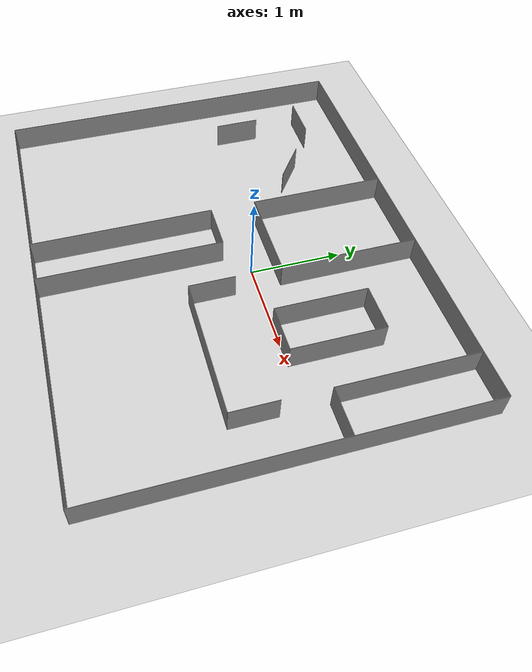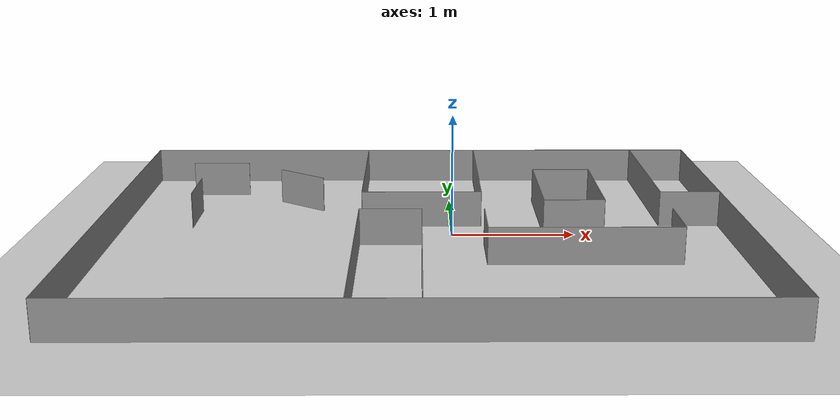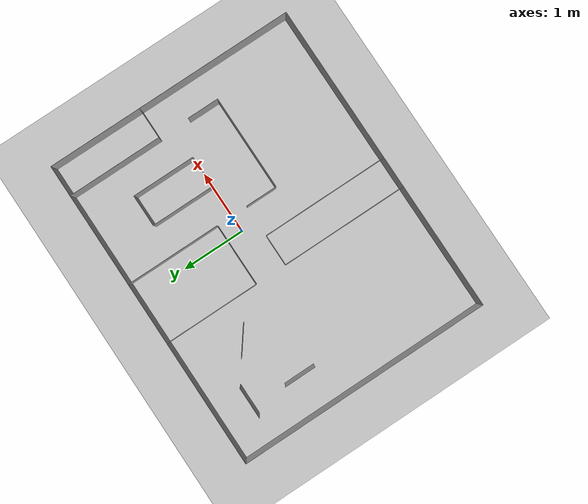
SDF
<sdf version="1.7">
 <world name="default">
  <light name="sun" type="directional">
   <pose>0 0 10 0 -0 0</pose>
   <diffuse>0.8 0.8 0.8 1</diffuse>
   <specular>0.2 0.2 0.2 1</specular>
   <attenuation>
    <range>1000</range>
    <constant>0.9</constant>
    <linear>0.01</linear>
    <quadratic>0.001</quadratic>
   </attenuation>
   <direction>-0.5 0.1 -0.9</direction>
   <spot><inner_angle>0</inner_angle><outer_angle>0</outer_angle><falloff>0</falloff></spot>
  </light>
  <model name="ground_plane">
   <static>1</static>
   <link name="link">
    <collision name="collision">
     <geometry><plane><normal>0 0 1</normal><size>100 100</size></plane></geometry>
     <surface>
      <contact><collide_bitmask>65535</collide_bitmask></contact>
      <friction><ode><mu>100</mu><mu2>50</mu2></ode></friction>
     </surface>
    </collision>
    <visual name="visual">
     <cast_shadows>0</cast_shadows>
     <geometry><plane><normal>0 0 1</normal><size>100 100</size></plane></geometry>
     <material>
      <script><uri>file://media/materials/scripts/gazebo.material</uri><name>Gazebo/Grey</name></script>
     </material>
    </visual>
   </link>
  </model>
  <gravity>0 0 -9.8</gravity>
  <magnetic_field>6e-06 2.3e-05 -4.2e-05</magnetic_field>
  <atmosphere type="adiabatic"/>
  <physics type="ode">
   <max_step_size>0.001</max_step_size>
   <real_time_factor>1</real_time_factor>
   <real_time_update_rate>1000</real_time_update_rate>
  </physics>
  <scene><ambient>0.4 0.4 0.4 1</ambient><background>0.7 0.7 0.7 1</background><shadows>1</shadows></scene>
  <spherical_coordinates>
   <surface_model>EARTH_WGS84</surface_model>
   <latitude_deg>0</latitude_deg>
   <longitude_deg>0</longitude_deg>
   <elevation>0</elevation>
   <heading_deg>0</heading_deg>
  </spherical_coordinates>
  <model name="boundary_5*0.3_clone">
   <link name="link">
    <inertial>
     <mass>1</mass>
     <inertia>
      <ixx>0.166667</ixx>
      <ixy>0</ixy>
      <ixz>0</ixz>
      <iyy>0.166667</iyy>
      <iyz>0</iyz>
      <izz>0.166667</izz>
     </inertia>
    </inertial>
    <visual name="visual">
     <geometry><box><size>5 0.005 0.3</size></box></geometry>
     <material>
      <script><name>Gazebo/Grey</name><uri>file://media/materials/scripts/gazebo.material</uri></script>
      <shader type="pixel"><normal_map>__default__</normal_map></shader>
      <ambient>0.3 0.3 0.3 1</ambient>
      <diffuse>0.7 0.7 0.7 1</diffuse>
      <specular>0.01 0.01 0.01 1</specular>
      <emissive>0 0 0 1</emissive>
     </material>
    </visual>
    <collision name="collision">
     <geometry><box><size>5 0.005 0.3</size></box></geometry>
     <surface>
      <friction>
       <ode><mu>1</mu><mu2>1</mu2><fdir1>0 0 0</fdir1><slip1>0</slip1><slip2>0</slip2></ode>
       <torsional>
        <coefficient>1</coefficient>
        <patch_radius>0</patch_radius>
        <surface_radius>0</surface_radius>
        <use_patch_radius>1</use_patch_radius>
        <ode><slip>0</slip></ode>
       </torsional>
      </friction>
      <bounce><restitution_coefficient>0</restitution_coefficient><threshold>1e+06</threshold></bounce>
      <contact>
       <collide_without_contact>0</collide_without_contact>
       <collide_without_contact_bitmask>1</collide_without_contact_bitmask>
       <collide_bitmask>1</collide_bitmask>
       <ode>
        <soft_cfm>0</soft_cfm>
        <soft_erp>0.2</soft_erp>
        <kp>1e+13</kp>
        <kd>1</kd>
        <max_vel>0.01</max_vel>
        <min_depth>0</min_depth>
       </ode>
       <bullet>
        <split_impulse>1</split_impulse>
        <split_impulse_penetration_threshold>-0.01</split_impulse_penetration_threshold>
        <soft_cfm>0</soft_cfm>
        <soft_erp>0.2</soft_erp>
        <kp>1e+13</kp>
        <kd>1</kd>
       </bullet>
      </contact>
     </surface>
    </collision>
   </link>
   <static>0</static>
   <pose>-0.25 -2.25 0.15 0 -0 0</pose>
  </model>
  <model name="boundry_4*0.3">
   <link name="link">
    <inertial>
     <mass>1</mass>
     <inertia>
      <ixx>0.166667</ixx>
      <ixy>0</ixy>
      <ixz>0</ixz>
      <iyy>0.166667</iyy>
      <iyz>0</iyz>
      <izz>0.166667</izz>
     </inertia>
    </inertial>
    <visual name="visual">
     <geometry><box><size>0.005 4 0.3</size></box></geometry>
     <material>
      <script><name>Gazebo/Grey</name><uri>file://media/materials/scripts/gazebo.material</uri></script>
      <shader type="pixel"><normal_map>__default__</normal_map></shader>
      <ambient>0.3 0.3 0.3 1</ambient>
      <diffuse>0.7 0.7 0.7 1</diffuse>
      <specular>0.01 0.01 0.01 1</specular>
      <emissive>0 0 0 1</emissive>
     </material>
    </visual>
    <collision name="collision">
     <geometry><box><size>0.005 4 0.3</size></box></geometry>
     <surface>
      <friction>
       <ode><mu>1</mu><mu2>1</mu2><fdir1>0 0 0</fdir1><slip1>0</slip1><slip2>0</slip2></ode>
       <torsional>
        <coefficient>1</coefficient>
        <patch_radius>0</patch_radius>
        <surface_radius>0</surface_radius>
        <use_patch_radius>1</use_patch_radius>
        <ode><slip>0</slip></ode>
       </torsional>
      </friction>
      <bounce><restitution_coefficient>0</restitution_coefficient><threshold>1e+06</threshold></bounce>
      <contact>
       <collide_without_contact>0</collide_without_contact>
       <collide_without_contact_bitmask>1</collide_without_contact_bitmask>
       <collide_bitmask>1</collide_bitmask>
       <ode>
        <soft_cfm>0</soft_cfm>
        <soft_erp>0.2</soft_erp>
        <kp>1e+13</kp>
        <kd>1</kd>
        <max_vel>0.01</max_vel>
        <min_depth>0</min_depth>
       </ode>
       <bullet>
        <split_impulse>1</split_impulse>
        <split_impulse_penetration_threshold>-0.01</split_impulse_penetration_threshold>
        <soft_cfm>0</soft_cfm>
        <soft_erp>0.2</soft_erp>
        <kp>1e+13</kp>
        <kd>1</kd>
       </bullet>
      </contact>
     </surface>
    </collision>
   </link>
   <static>0</static>
   <pose>-2.75 -0.25 0.15 0 -0 0</pose>
  </model>
  <model name="boundary_5*0.3">
   <link name="link">
    <inertial>
     <mass>1</mass>
     <inertia>
      <ixx>0.166667</ixx>
      <ixy>0</ixy>
      <ixz>0</ixz>
      <iyy>0.166667</iyy>
      <iyz>0</iyz>
      <izz>0.166667</izz>
     </inertia>
    </inertial>
    <visual name="visual">
     <geometry><box><size>5 0.005 0.3</size></box></geometry>
     <material>
      <script><name>Gazebo/Grey</name><uri>file://media/materials/scripts/gazebo.material</uri></script>
      <shader type="pixel"><normal_map>__default__</normal_map></shader>
      <ambient>0.3 0.3 0.3 1</ambient>
      <diffuse>0.7 0.7 0.7 1</diffuse>
      <specular>0.01 0.01 0.01 1</specular>
      <emissive>0 0 0 1</emissive>
     </material>
    </visual>
    <collision name="collision">
     <geometry><box><size>5 0.005 0.3</size></box></geometry>
     <surface>
      <friction>
       <ode><mu>1</mu><mu2>1</mu2><fdir1>0 0 0</fdir1><slip1>0</slip1><slip2>0</slip2></ode>
       <torsional>
        <coefficient>1</coefficient>
        <patch_radius>0</patch_radius>
        <surface_radius>0</surface_radius>
        <use_patch_radius>1</use_patch_radius>
        <ode><slip>0</slip></ode>
       </torsional>
      </friction>
      <bounce><restitution_coefficient>0</restitution_coefficient><threshold>1e+06</threshold></bounce>
      <contact>
       <collide_without_contact>0</collide_without_contact>
       <collide_without_contact_bitmask>1</collide_without_contact_bitmask>
       <collide_bitmask>1</collide_bitmask>
       <ode>
        <soft_cfm>0</soft_cfm>
        <soft_erp>0.2</soft_erp>
        <kp>1e+13</kp>
        <kd>1</kd>
        <max_vel>0.01</max_vel>
        <min_depth>0</min_depth>
       </ode>
       <bullet>
        <split_impulse>1</split_impulse>
        <split_impulse_penetration_threshold>-0.01</split_impulse_penetration_threshold>
        <soft_cfm>0</soft_cfm>
        <soft_erp>0.2</soft_erp>
        <kp>1e+13</kp>
        <kd>1</kd>
       </bullet>
      </contact>
     </surface>
    </collision>
   </link>
   <static>0</static>
   <pose>-0.25 1.75 0.15 0 -0 0</pose>
  </model>
  <model name="boundry_4*0.3_clone">
   <link name="link">
    <inertial>
     <mass>1</mass>
     <inertia>
      <ixx>0.166667</ixx>
      <ixy>0</ixy>
      <ixz>0</ixz>
      <iyy>0.166667</iyy>
      <iyz>0</iyz>
      <izz>0.166667</izz>
     </inertia>
    </inertial>
    <visual name="visual">
     <geometry><box><size>0.005 4 0.3</size></box></geometry>
     <material>
      <script><name>Gazebo/Grey</name><uri>file://media/materials/scripts/gazebo.material</uri></script>
      <shader type="pixel"><normal_map>__default__</normal_map></shader>
      <ambient>0.3 0.3 0.3 1</ambient>
      <diffuse>0.7 0.7 0.7 1</diffuse>
      <specular>0.01 0.01 0.01 1</specular>
      <emissive>0 0 0 1</emissive>
     </material>
    </visual>
    <collision name="collision">
     <geometry><box><size>0.005 4 0.3</size></box></geometry>
     <surface>
      <friction>
       <ode><mu>1</mu><mu2>1</mu2><fdir1>0 0 0</fdir1><slip1>0</slip1><slip2>0</slip2></ode>
       <torsional>
        <coefficient>1</coefficient>
        <patch_radius>0</patch_radius>
        <surface_radius>0</surface_radius>
        <use_patch_radius>1</use_patch_radius>
        <ode><slip>0</slip></ode>
       </torsional>
      </friction>
      <bounce><restitution_coefficient>0</restitution_coefficient><threshold>1e+06</threshold></bounce>
      <contact>
       <collide_without_contact>0</collide_without_contact>
       <collide_without_contact_bitmask>1</collide_without_contact_bitmask>
       <collide_bitmask>1</collide_bitmask>
       <ode>
        <soft_cfm>0</soft_cfm>
        <soft_erp>0.2</soft_erp>
        <kp>1e+13</kp>
        <kd>1</kd>
        <max_vel>0.01</max_vel>
        <min_depth>0</min_depth>
       </ode>
       <bullet>
        <split_impulse>1</split_impulse>
        <split_impulse_penetration_threshold>-0.01</split_impulse_penetration_threshold>
        <soft_cfm>0</soft_cfm>
        <soft_erp>0.2</soft_erp>
        <kp>1e+13</kp>
        <kd>1</kd>
       </bullet>
      </contact>
     </surface>
    </collision>
   </link>
   <static>0</static>
   <pose>2.25 -0.25 0.15 0 -0 0</pose>
  </model>
  <model name="boundry_1.5*0.3">
   <link name="link">
    <inertial>
     <mass>1</mass>
     <inertia>
      <ixx>0.166667</ixx>
      <ixy>0</ixy>
      <ixz>0</ixz>
      <iyy>0.166667</iyy>
      <iyz>0</iyz>
      <izz>0.166667</izz>
     </inertia>
    </inertial>
    <visual name="visual">
     <geometry><box><size>0.005 1.5 0.3</size></box></geometry>
     <material>
      <script><name>Gazebo/Grey</name><uri>file://media/materials/scripts/gazebo.material</uri></script>
      <shader type="pixel"><normal_map>__default__</normal_map></shader>
      <ambient>0.3 0.3 0.3 1</ambient>
      <diffuse>0.7 0.7 0.7 1</diffuse>
      <specular>0.01 0.01 0.01 1</specular>
      <emissive>0 0 0 1</emissive>
     </material>
    </visual>
    <collision name="collision">
     <geometry><box><size>0.005 1.5 0.3</size></box></geometry>
     <surface>
      <friction>
       <ode><mu>1</mu><mu2>1</mu2><fdir1>0 0 0</fdir1><slip1>0</slip1><slip2>0</slip2></ode>
       <torsional>
        <coefficient>1</coefficient>
        <patch_radius>0</patch_radius>
        <surface_radius>0</surface_radius>
        <use_patch_radius>1</use_patch_radius>
        <ode><slip>0</slip></ode>
       </torsional>
      </friction>
      <bounce><restitution_coefficient>0</restitution_coefficient><threshold>1e+06</threshold></bounce>
      <contact>
       <collide_without_contact>0</collide_without_contact>
       <collide_without_contact_bitmask>1</collide_without_contact_bitmask>
       <collide_bitmask>1</collide_bitmask>
       <ode>
        <soft_cfm>0</soft_cfm>
        <soft_erp>0.2</soft_erp>
        <kp>1e+13</kp>
        <kd>1</kd>
        <max_vel>0.01</max_vel>
        <min_depth>0</min_depth>
       </ode>
       <bullet>
        <split_impulse>1</split_impulse>
        <split_impulse_penetration_threshold>-0.01</split_impulse_penetration_threshold>
        <soft_cfm>0</soft_cfm>
        <soft_erp>0.2</soft_erp>
        <kp>1e+13</kp>
        <kd>1</kd>
       </bullet>
      </contact>
     </surface>
    </collision>
   </link>
   <static>0</static>
   <pose>-0.75 1 0.15 0 -0 0</pose>
  </model>
  <model name="boundry_1.5*0.3_clone">
   <link name="link">
    <inertial>
     <mass>1</mass>
     <inertia>
      <ixx>0.166667</ixx>
      <ixy>0</ixy>
      <ixz>0</ixz>
      <iyy>0.166667</iyy>
      <iyz>0</iyz>
      <izz>0.166667</izz>
     </inertia>
    </inertial>
    <visual name="visual">
     <geometry><box><size>0.005 1.5 0.3</size></box></geometry>
     <material>
      <script><name>Gazebo/Grey</name><uri>file://media/materials/scripts/gazebo.material</uri></script>
      <shader type="pixel"><normal_map>__default__</normal_map></shader>
      <ambient>0.3 0.3 0.3 1</ambient>
      <diffuse>0.7 0.7 0.7 1</diffuse>
      <specular>0.01 0.01 0.01 1</specular>
      <emissive>0 0 0 1</emissive>
     </material>
    </visual>
    <collision name="collision">
     <geometry><box><size>0.005 1.5 0.3</size></box></geometry>
     <surface>
      <friction>
       <ode><mu>1</mu><mu2>1</mu2><fdir1>0 0 0</fdir1><slip1>0</slip1><slip2>0</slip2></ode>
       <torsional>
        <coefficient>1</coefficient>
        <patch_radius>0</patch_radius>
        <surface_radius>0</surface_radius>
        <use_patch_radius>1</use_patch_radius>
        <ode><slip>0</slip></ode>
       </torsional>
      </friction>
      <bounce><restitution_coefficient>0</restitution_coefficient><threshold>1e+06</threshold></bounce>
      <contact>
       <collide_without_contact>0</collide_without_contact>
       <collide_without_contact_bitmask>1</collide_without_contact_bitmask>
       <collide_bitmask>1</collide_bitmask>
       <ode>
        <soft_cfm>0</soft_cfm>
        <soft_erp>0.2</soft_erp>
        <kp>1e+13</kp>
        <kd>1</kd>
        <max_vel>0.01</max_vel>
        <min_depth>0</min_depth>
       </ode>
       <bullet>
        <split_impulse>1</split_impulse>
        <split_impulse_penetration_threshold>-0.01</split_impulse_penetration_threshold>
        <soft_cfm>0</soft_cfm>
        <soft_erp>0.2</soft_erp>
        <kp>1e+13</kp>
        <kd>1</kd>
       </bullet>
      </contact>
     </surface>
    </collision>
   </link>
   <static>0</static>
   <pose>0.25 1 0.15 0 -0 0</pose>
  </model>
  <model name="boundry_1.5*0.3_clone_0">
   <link name="link">
    <inertial>
     <mass>1</mass>
     <inertia>
      <ixx>0.166667</ixx>
      <ixy>0</ixy>
      <ixz>0</ixz>
      <iyy>0.166667</iyy>
      <iyz>0</iyz>
      <izz>0.166667</izz>
     </inertia>
    </inertial>
    <visual name="visual">
     <geometry><box><size>0.005 1.5 0.3</size></box></geometry>
     <material>
      <script><name>Gazebo/Grey</name><uri>file://media/materials/scripts/gazebo.material</uri></script>
      <shader type="pixel"><normal_map>__default__</normal_map></shader>
      <ambient>0.3 0.3 0.3 1</ambient>
      <diffuse>0.7 0.7 0.7 1</diffuse>
      <specular>0.01 0.01 0.01 1</specular>
      <emissive>0 0 0 1</emissive>
     </material>
    </visual>
    <collision name="collision">
     <geometry><box><size>0.005 1.5 0.3</size></box></geometry>
     <surface>
      <friction>
       <ode><mu>1</mu><mu2>1</mu2><fdir1>0 0 0</fdir1><slip1>0</slip1><slip2>0</slip2></ode>
       <torsional>
        <coefficient>1</coefficient>
        <patch_radius>0</patch_radius>
        <surface_radius>0</surface_radius>
        <use_patch_radius>1</use_patch_radius>
        <ode><slip>0</slip></ode>
       </torsional>
      </friction>
      <bounce><restitution_coefficient>0</restitution_coefficient><threshold>1e+06</threshold></bounce>
      <contact>
       <collide_without_contact>0</collide_without_contact>
       <collide_without_contact_bitmask>1</collide_without_contact_bitmask>
       <collide_bitmask>1</collide_bitmask>
       <ode>
        <soft_cfm>0</soft_cfm>
        <soft_erp>0.2</soft_erp>
        <kp>1e+13</kp>
        <kd>1</kd>
        <max_vel>0.01</max_vel>
        <min_depth>0</min_depth>
       </ode>
       <bullet>
        <split_impulse>1</split_impulse>
        <split_impulse_penetration_threshold>-0.01</split_impulse_penetration_threshold>
        <soft_cfm>0</soft_cfm>
        <soft_erp>0.2</soft_erp>
        <kp>1e+13</kp>
        <kd>1</kd>
       </bullet>
      </contact>
     </surface>
    </collision>
   </link>
   <static>0</static>
   <pose>1.75 1 0.15 0 -0 0</pose>
  </model>
  <model name="boundry_2*0.3">
   <link name="link">
    <inertial>
     <mass>1</mass>
     <inertia>
      <ixx>0.166667</ixx>
      <ixy>0</ixy>
      <ixz>0</ixz>
      <iyy>0.166667</iyy>
      <iyz>0</iyz>
      <izz>0.166667</izz>
     </inertia>
    </inertial>
    <visual name="visual">
     <geometry><box><size>0.005 2 0.3</size></box></geometry>
     <material>
      <script><name>Gazebo/Grey</name><uri>file://media/materials/scripts/gazebo.material</uri></script>
      <shader type="pixel"><normal_map>__default__</normal_map></shader>
      <ambient>0.3 0.3 0.3 1</ambient>
      <diffuse>0.7 0.7 0.7 1</diffuse>
      <specular>0.01 0.01 0.01 1</specular>
      <emissive>0 0 0 1</emissive>
     </material>
    </visual>
    <collision name="collision">
     <geometry><box><size>0.005 2 0.3</size></box></geometry>
     <surface>
      <friction>
       <ode><mu>1</mu><mu2>1</mu2><fdir1>0 0 0</fdir1><slip1>0</slip1><slip2>0</slip2></ode>
       <torsional>
        <coefficient>1</coefficient>
        <patch_radius>0</patch_radius>
        <surface_radius>0</surface_radius>
        <use_patch_radius>1</use_patch_radius>
        <ode><slip>0</slip></ode>
       </torsional>
      </friction>
      <bounce><restitution_coefficient>0</restitution_coefficient><threshold>1e+06</threshold></bounce>
      <contact>
       <collide_without_contact>0</collide_without_contact>
       <collide_without_contact_bitmask>1</collide_without_contact_bitmask>
       <collide_bitmask>1</collide_bitmask>
       <ode>
        <soft_cfm>0</soft_cfm>
        <soft_erp>0.2</soft_erp>
        <kp>1e+13</kp>
        <kd>1</kd>
        <max_vel>0.01</max_vel>
        <min_depth>0</min_depth>
       </ode>
       <bullet>
        <split_impulse>1</split_impulse>
        <split_impulse_penetration_threshold>-0.01</split_impulse_penetration_threshold>
        <soft_cfm>0</soft_cfm>
        <soft_erp>0.2</soft_erp>
        <kp>1e+13</kp>
        <kd>1</kd>
       </bullet>
      </contact>
     </surface>
    </collision>
   </link>
   <static>0</static>
   <pose>-0.75 -1.25 0.15 0 -0 0</pose>
  </model>
  <model name="boundry_2*0.3_clone">
   <link name="link">
    <inertial>
     <mass>1</mass>
     <inertia>
      <ixx>0.166667</ixx>
      <ixy>0</ixy>
      <ixz>0</ixz>
      <iyy>0.166667</iyy>
      <iyz>0</iyz>
      <izz>0.166667</izz>
     </inertia>
    </inertial>
    <visual name="visual">
     <geometry><box><size>0.005 2 0.3</size></box></geometry>
     <material>
      <script><name>Gazebo/Grey</name><uri>file://media/materials/scripts/gazebo.material</uri></script>
      <shader type="pixel"><normal_map>__default__</normal_map></shader>
      <ambient>0.3 0.3 0.3 1</ambient>
      <diffuse>0.7 0.7 0.7 1</diffuse>
      <specular>0.01 0.01 0.01 1</specular>
      <emissive>0 0 0 1</emissive>
     </material>
    </visual>
    <collision name="collision">
     <geometry><box><size>0.005 2 0.3</size></box></geometry>
     <surface>
      <friction>
       <ode><mu>1</mu><mu2>1</mu2><fdir1>0 0 0</fdir1><slip1>0</slip1><slip2>0</slip2></ode>
       <torsional>
        <coefficient>1</coefficient>
        <patch_radius>0</patch_radius>
        <surface_radius>0</surface_radius>
        <use_patch_radius>1</use_patch_radius>
        <ode><slip>0</slip></ode>
       </torsional>
      </friction>
      <bounce><restitution_coefficient>0</restitution_coefficient><threshold>1e+06</threshold></bounce>
      <contact>
       <collide_without_contact>0</collide_without_contact>
       <collide_without_contact_bitmask>1</collide_without_contact_bitmask>
       <collide_bitmask>1</collide_bitmask>
       <ode>
        <soft_cfm>0</soft_cfm>
        <soft_erp>0.2</soft_erp>
        <kp>1e+13</kp>
        <kd>1</kd>
        <max_vel>0.01</max_vel>
        <min_depth>0</min_depth>
       </ode>
       <bullet>
        <split_impulse>1</split_impulse>
        <split_impulse_penetration_threshold>-0.01</split_impulse_penetration_threshold>
        <soft_cfm>0</soft_cfm>
        <soft_erp>0.2</soft_erp>
        <kp>1e+13</kp>
        <kd>1</kd>
       </bullet>
      </contact>
     </surface>
    </collision>
   </link>
   <static>0</static>
   <pose>-0.25 -1.25 0.15 0 -0 0</pose>
  </model>
  <model name="boundry_1.5*0.3_clone_clone">
   <link name="link">
    <inertial>
     <mass>1</mass>
     <inertia>
      <ixx>0.166667</ixx>
      <ixy>0</ixy>
      <ixz>0</ixz>
      <iyy>0.166667</iyy>
      <iyz>0</iyz>
      <izz>0.166667</izz>
     </inertia>
    </inertial>
    <visual name="visual">
     <geometry><box><size>0.005 1.5 0.3</size></box></geometry>
     <material>
      <script><name>Gazebo/Grey</name><uri>file://media/materials/scripts/gazebo.material</uri></script>
      <shader type="pixel"><normal_map>__default__</normal_map></shader>
      <ambient>0.3 0.3 0.3 1</ambient>
      <diffuse>0.7 0.7 0.7 1</diffuse>
      <specular>0.01 0.01 0.01 1</specular>
      <emissive>0 0 0 1</emissive>
     </material>
    </visual>
    <collision name="collision">
     <geometry><box><size>0.005 1.5 0.3</size></box></geometry>
     <surface>
      <friction>
       <ode><mu>1</mu><mu2>1</mu2><fdir1>0 0 0</fdir1><slip1>0</slip1><slip2>0</slip2></ode>
       <torsional>
        <coefficient>1</coefficient>
        <patch_radius>0</patch_radius>
        <surface_radius>0</surface_radius>
        <use_patch_radius>1</use_patch_radius>
        <ode><slip>0</slip></ode>
       </torsional>
      </friction>
      <bounce><restitution_coefficient>0</restitution_coefficient><threshold>1e+06</threshold></bounce>
      <contact>
       <collide_without_contact>0</collide_without_contact>
       <collide_without_contact_bitmask>1</collide_without_contact_bitmask>
       <collide_bitmask>1</collide_bitmask>
       <ode>
        <soft_cfm>0</soft_cfm>
        <soft_erp>0.2</soft_erp>
        <kp>1e+13</kp>
        <kd>1</kd>
        <max_vel>0.01</max_vel>
        <min_depth>0</min_depth>
       </ode>
       <bullet>
        <split_impulse>1</split_impulse>
        <split_impulse_penetration_threshold>-0.01</split_impulse_penetration_threshold>
        <soft_cfm>0</soft_cfm>
        <soft_erp>0.2</soft_erp>
        <kp>1e+13</kp>
        <kd>1</kd>
       </bullet>
      </contact>
     </surface>
    </collision>
   </link>
   <static>0</static>
   <pose>1 -0.75 0.15 0 -0 1.5708</pose>
  </model>
  <model name="boundary_1*0.3">
   <link name="link">
    <inertial>
     <mass>1</mass>
     <inertia>
      <ixx>0.166667</ixx>
      <ixy>0</ixy>
      <ixz>0</ixz>
      <iyy>0.166667</iyy>
      <iyz>0</iyz>
      <izz>0.166667</izz>
     </inertia>
    </inertial>
    <visual name="visual">
     <geometry><box><size>1 0.005 0.3</size></box></geometry>
     <material>
      <script><name>Gazebo/Grey</name><uri>file://media/materials/scripts/gazebo.material</uri></script>
      <shader type="pixel"><normal_map>__default__</normal_map></shader>
      <ambient>0.3 0.3 0.3 1</ambient>
      <diffuse>0.7 0.7 0.7 1</diffuse>
      <specular>0.01 0.01 0.01 1</specular>
      <emissive>0 0 0 1</emissive>
     </material>
    </visual>
    <collision name="collision">
     <geometry><box><size>1 0.005 0.3</size></box></geometry>
     <surface>
      <friction>
       <ode><mu>1</mu><mu2>1</mu2><fdir1>0 0 0</fdir1><slip1>0</slip1><slip2>0</slip2></ode>
       <torsional>
        <coefficient>1</coefficient>
        <patch_radius>0</patch_radius>
        <surface_radius>0</surface_radius>
        <use_patch_radius>1</use_patch_radius>
        <ode><slip>0</slip></ode>
       </torsional>
      </friction>
      <bounce><restitution_coefficient>0</restitution_coefficient><threshold>1e+06</threshold></bounce>
      <contact>
       <collide_without_contact>0</collide_without_contact>
       <collide_without_contact_bitmask>1</collide_without_contact_bitmask>
       <collide_bitmask>1</collide_bitmask>
       <ode>
        <soft_cfm>0</soft_cfm>
        <soft_erp>0.2</soft_erp>
        <kp>1e+13</kp>
        <kd>1</kd>
        <max_vel>0.01</max_vel>
        <min_depth>0</min_depth>
       </ode>
       <bullet>
        <split_impulse>1</split_impulse>
        <split_impulse_penetration_threshold>-0.01</split_impulse_penetration_threshold>
        <soft_cfm>0</soft_cfm>
        <soft_erp>0.2</soft_erp>
        <kp>1e+13</kp>
        <kd>1</kd>
       </bullet>
      </contact>
     </surface>
    </collision>
   </link>
   <static>0</static>
   <pose>-0.25 0.25 0.15 0 -0 0</pose>
  </model>
  <model name="boundary_0.5*0.3">
   <link name="link">
    <inertial>
     <mass>1</mass>
     <inertia>
      <ixx>0.166667</ixx>
      <ixy>0</ixy>
      <ixz>0</ixz>
      <iyy>0.166667</iyy>
      <iyz>0</iyz>
      <izz>0.166667</izz>
     </inertia>
    </inertial>
    <visual name="visual">
     <geometry><box><size>0.5 0.005 0.3</size></box></geometry>
     <material>
      <script><name>Gazebo/Grey</name><uri>file://media/materials/scripts/gazebo.material</uri></script>
      <shader type="pixel"><normal_map>__default__</normal_map></shader>
      <ambient>0.3 0.3 0.3 1</ambient>
      <diffuse>0.7 0.7 0.7 1</diffuse>
      <specular>0.01 0.01 0.01 1</specular>
      <emissive>0 0 0 1</emissive>
     </material>
    </visual>
    <collision name="collision">
     <geometry><box><size>0.5 0.005 0.3</size></box></geometry>
     <surface>
      <friction>
       <ode><mu>1</mu><mu2>1</mu2><fdir1>0 0 0</fdir1><slip1>0</slip1><slip2>0</slip2></ode>
       <torsional>
        <coefficient>1</coefficient>
        <patch_radius>0</patch_radius>
        <surface_radius>0</surface_radius>
        <use_patch_radius>1</use_patch_radius>
        <ode><slip>0</slip></ode>
       </torsional>
      </friction>
      <bounce><restitution_coefficient>0</restitution_coefficient><threshold>1e+06</threshold></bounce>
      <contact>
       <collide_without_contact>0</collide_without_contact>
       <collide_without_contact_bitmask>1</collide_without_contact_bitmask>
       <collide_bitmask>1</collide_bitmask>
       <ode>
        <soft_cfm>0</soft_cfm>
        <soft_erp>0.2</soft_erp>
        <kp>1e+13</kp>
        <kd>1</kd>
        <max_vel>0.01</max_vel>
        <min_depth>0</min_depth>
       </ode>
       <bullet>
        <split_impulse>1</split_impulse>
        <split_impulse_penetration_threshold>-0.01</split_impulse_penetration_threshold>
        <soft_cfm>0</soft_cfm>
        <soft_erp>0.2</soft_erp>
        <kp>1e+13</kp>
        <kd>1</kd>
       </bullet>
      </contact>
     </surface>
    </collision>
   </link>
   <static>0</static>
   <pose>-0.5 -0.25 0.15 0 -0 0</pose>
  </model>
  <model name="boundary_0.5*0.3_clone">
   <link name="link">
    <inertial>
     <mass>1</mass>
     <inertia>
      <ixx>0.166667</ixx>
      <ixy>0</ixy>
      <ixz>0</ixz>
      <iyy>0.166667</iyy>
      <iyz>0</iyz>
      <izz>0.166667</izz>
     </inertia>
    </inertial>
    <visual name="visual">
     <geometry><box><size>0.5 0.005 0.3</size></box></geometry>
     <material>
      <script><name>Gazebo/Grey</name><uri>file://media/materials/scripts/gazebo.material</uri></script>
      <shader type="pixel"><normal_map>__default__</normal_map></shader>
      <ambient>0.3 0.3 0.3 1</ambient>
      <diffuse>0.7 0.7 0.7 1</diffuse>
      <specular>0.01 0.01 0.01 1</specular>
      <emissive>0 0 0 1</emissive>
     </material>
    </visual>
    <collision name="collision">
     <geometry><box><size>0.5 0.005 0.3</size></box></geometry>
     <surface>
      <friction>
       <ode><mu>1</mu><mu2>1</mu2><fdir1>0 0 0</fdir1><slip1>0</slip1><slip2>0</slip2></ode>
       <torsional>
        <coefficient>1</coefficient>
        <patch_radius>0</patch_radius>
        <surface_radius>0</surface_radius>
        <use_patch_radius>1</use_patch_radius>
        <ode><slip>0</slip></ode>
       </torsional>
      </friction>
      <bounce><restitution_coefficient>0</restitution_coefficient><threshold>1e+06</threshold></bounce>
      <contact>
       <collide_without_contact>0</collide_without_contact>
       <collide_without_contact_bitmask>1</collide_without_contact_bitmask>
       <collide_bitmask>1</collide_bitmask>
       <ode>
        <soft_cfm>0</soft_cfm>
        <soft_erp>0.2</soft_erp>
        <kp>1e+13</kp>
        <kd>1</kd>
        <max_vel>0.01</max_vel>
        <min_depth>0</min_depth>
       </ode>
       <bullet>
        <split_impulse>1</split_impulse>
        <split_impulse_penetration_threshold>-0.01</split_impulse_penetration_threshold>
        <soft_cfm>0</soft_cfm>
        <soft_erp>0.2</soft_erp>
        <kp>1e+13</kp>
        <kd>1</kd>
       </bullet>
      </contact>
     </surface>
    </collision>
   </link>
   <static>0</static>
   <pose>2 0.25 0.15 0 -0 0</pose>
  </model>
  <model name="boundary_0.5*0.3_clone_clone">
   <link name="link">
    <inertial>
     <mass>1</mass>
     <inertia>
      <ixx>0.166667</ixx>
      <ixy>0</ixy>
      <ixz>0</ixz>
      <iyy>0.166667</iyy>
      <iyz>0</iyz>
      <izz>0.166667</izz>
     </inertia>
    </inertial>
    <visual name="visual">
     <geometry><box><size>0.5 0.005 0.3</size></box></geometry>
     <material>
      <script><name>Gazebo/Grey</name><uri>file://media/materials/scripts/gazebo.material</uri></script>
      <shader type="pixel"><normal_map>__default__</normal_map></shader>
      <ambient>0.3 0.3 0.3 1</ambient>
      <diffuse>0.7 0.7 0.7 1</diffuse>
      <specular>0.01 0.01 0.01 1</specular>
      <emissive>0 0 0 1</emissive>
     </material>
    </visual>
    <collision name="collision">
     <geometry><box><size>0.5 0.005 0.3</size></box></geometry>
     <surface>
      <friction>
       <ode><mu>1</mu><mu2>1</mu2><fdir1>0 0 0</fdir1><slip1>0</slip1><slip2>0</slip2></ode>
       <torsional>
        <coefficient>1</coefficient>
        <patch_radius>0</patch_radius>
        <surface_radius>0</surface_radius>
        <use_patch_radius>1</use_patch_radius>
        <ode><slip>0</slip></ode>
       </torsional>
      </friction>
      <bounce><restitution_coefficient>0</restitution_coefficient><threshold>1e+06</threshold></bounce>
      <contact>
       <collide_without_contact>0</collide_without_contact>
       <collide_without_contact_bitmask>1</collide_without_contact_bitmask>
       <collide_bitmask>1</collide_bitmask>
       <ode>
        <soft_cfm>0</soft_cfm>
        <soft_erp>0.2</soft_erp>
        <kp>1e+13</kp>
        <kd>1</kd>
        <max_vel>0.01</max_vel>
        <min_depth>0</min_depth>
       </ode>
       <bullet>
        <split_impulse>1</split_impulse>
        <split_impulse_penetration_threshold>-0.01</split_impulse_penetration_threshold>
        <soft_cfm>0</soft_cfm>
        <soft_erp>0.2</soft_erp>
        <kp>1e+13</kp>
        <kd>1</kd>
       </bullet>
      </contact>
     </surface>
    </collision>
   </link>
   <static>0</static>
   <pose>1 0 0.15 0 -0 0</pose>
  </model>
  <model name="boundary_0.5*0.3_clone_clone_0">
   <link name="link">
    <inertial>
     <mass>1</mass>
     <inertia>
      <ixx>0.166667</ixx>
      <ixy>0</ixy>
      <ixz>0</ixz>
      <iyy>0.166667</iyy>
      <iyz>0</iyz>
      <izz>0.166667</izz>
     </inertia>
    </inertial>
    <visual name="visual">
     <geometry><box><size>0.5 0.005 0.3</size></box></geometry>
     <material>
      <script><name>Gazebo/Grey</name><uri>file://media/materials/scripts/gazebo.material</uri></script>
      <shader type="pixel"><normal_map>__default__</normal_map></shader>
      <ambient>0.3 0.3 0.3 1</ambient>
      <diffuse>0.7 0.7 0.7 1</diffuse>
      <specular>0.01 0.01 0.01 1</specular>
      <emissive>0 0 0 1</emissive>
     </material>
    </visual>
    <collision name="collision">
     <geometry><box><size>0.5 0.005 0.3</size></box></geometry>
     <surface>
      <friction>
       <ode><mu>1</mu><mu2>1</mu2><fdir1>0 0 0</fdir1><slip1>0</slip1><slip2>0</slip2></ode>
       <torsional>
        <coefficient>1</coefficient>
        <patch_radius>0</patch_radius>
        <surface_radius>0</surface_radius>
        <use_patch_radius>1</use_patch_radius>
        <ode><slip>0</slip></ode>
       </torsional>
      </friction>
      <bounce><restitution_coefficient>0</restitution_coefficient><threshold>1e+06</threshold></bounce>
      <contact>
       <collide_without_contact>0</collide_without_contact>
       <collide_without_contact_bitmask>1</collide_without_contact_bitmask>
       <collide_bitmask>1</collide_bitmask>
       <ode>
        <soft_cfm>0</soft_cfm>
        <soft_erp>0.2</soft_erp>
        <kp>1e+13</kp>
        <kd>1</kd>
        <max_vel>0.01</max_vel>
        <min_depth>0</min_depth>
       </ode>
       <bullet>
        <split_impulse>1</split_impulse>
        <split_impulse_penetration_threshold>-0.01</split_impulse_penetration_threshold>
        <soft_cfm>0</soft_cfm>
        <soft_erp>0.2</soft_erp>
        <kp>1e+13</kp>
        <kd>1</kd>
       </bullet>
      </contact>
     </surface>
    </collision>
   </link>
   <static>0</static>
   <pose>1 1 0.15 0 -0 0</pose>
  </model>
  <model name="boundary_1*0.3_clone">
   <link name="link">
    <inertial>
     <mass>1</mass>
     <inertia>
      <ixx>0.166667</ixx>
      <ixy>0</ixy>
      <ixz>0</ixz>
      <iyy>0.166667</iyy>
      <iyz>0</iyz>
      <izz>0.166667</izz>
     </inertia>
    </inertial>
    <visual name="visual">
     <geometry><box><size>1 0.005 0.3</size></box></geometry>
     <material>
      <script><name>Gazebo/Grey</name><uri>file://media/materials/scripts/gazebo.material</uri></script>
      <shader type="pixel"><normal_map>__default__</normal_map></shader>
      <ambient>0.3 0.3 0.3 1</ambient>
      <diffuse>0.7 0.7 0.7 1</diffuse>
      <specular>0.01 0.01 0.01 1</specular>
      <emissive>0 0 0 1</emissive>
     </material>
    </visual>
    <collision name="collision">
     <geometry><box><size>1 0.005 0.3</size></box></geometry>
     <surface>
      <friction>
       <ode><mu>1</mu><mu2>1</mu2><fdir1>0 0 0</fdir1><slip1>0</slip1><slip2>0</slip2></ode>
       <torsional>
        <coefficient>1</coefficient>
        <patch_radius>0</patch_radius>
        <surface_radius>0</surface_radius>
        <use_patch_radius>1</use_patch_radius>
        <ode><slip>0</slip></ode>
       </torsional>
      </friction>
      <bounce><restitution_coefficient>0</restitution_coefficient><threshold>1e+06</threshold></bounce>
      <contact>
       <collide_without_contact>0</collide_without_contact>
       <collide_without_contact_bitmask>1</collide_without_contact_bitmask>
       <collide_bitmask>1</collide_bitmask>
       <ode>
        <soft_cfm>0</soft_cfm>
        <soft_erp>0.2</soft_erp>
        <kp>1e+13</kp>
        <kd>1</kd>
        <max_vel>0.01</max_vel>
        <min_depth>0</min_depth>
       </ode>
       <bullet>
        <split_impulse>1</split_impulse>
        <split_impulse_penetration_threshold>-0.01</split_impulse_penetration_threshold>
        <soft_cfm>0</soft_cfm>
        <soft_erp>0.2</soft_erp>
        <kp>1e+13</kp>
        <kd>1</kd>
       </bullet>
      </contact>
     </surface>
    </collision>
   </link>
   <static>0</static>
   <pose>1.25 0.5 0.15 0 -0 1.5708</pose>
  </model>
  <model name="boundary_1*0.3_clone_clone">
   <link name="link">
    <inertial>
     <mass>1</mass>
     <inertia>
      <ixx>0.166667</ixx>
      <ixy>0</ixy>
      <ixz>0</ixz>
      <iyy>0.166667</iyy>
      <iyz>0</iyz>
      <izz>0.166667</izz>
     </inertia>
    </inertial>
    <visual name="visual">
     <geometry><box><size>1 0.005 0.3</size></box></geometry>
     <material>
      <script><name>Gazebo/Grey</name><uri>file://media/materials/scripts/gazebo.material</uri></script>
      <shader type="pixel"><normal_map>__default__</normal_map></shader>
      <ambient>0.3 0.3 0.3 1</ambient>
      <diffuse>0.7 0.7 0.7 1</diffuse>
      <specular>0.01 0.01 0.01 1</specular>
      <emissive>0 0 0 1</emissive>
     </material>
    </visual>
    <collision name="collision">
     <geometry><box><size>1 0.005 0.3</size></box></geometry>
     <surface>
      <friction>
       <ode><mu>1</mu><mu2>1</mu2><fdir1>0 0 0</fdir1><slip1>0</slip1><slip2>0</slip2></ode>
       <torsional>
        <coefficient>1</coefficient>
        <patch_radius>0</patch_radius>
        <surface_radius>0</surface_radius>
        <use_patch_radius>1</use_patch_radius>
        <ode><slip>0</slip></ode>
       </torsional>
      </friction>
      <bounce><restitution_coefficient>0</restitution_coefficient><threshold>1e+06</threshold></bounce>
      <contact>
       <collide_without_contact>0</collide_without_contact>
       <collide_without_contact_bitmask>1</collide_without_contact_bitmask>
       <collide_bitmask>1</collide_bitmask>
       <ode>
        <soft_cfm>0</soft_cfm>
        <soft_erp>0.2</soft_erp>
        <kp>1e+13</kp>
        <kd>1</kd>
        <max_vel>0.01</max_vel>
        <min_depth>0</min_depth>
       </ode>
       <bullet>
        <split_impulse>1</split_impulse>
        <split_impulse_penetration_threshold>-0.01</split_impulse_penetration_threshold>
        <soft_cfm>0</soft_cfm>
        <soft_erp>0.2</soft_erp>
        <kp>1e+13</kp>
        <kd>1</kd>
       </bullet>
      </contact>
     </surface>
    </collision>
   </link>
   <static>0</static>
   <pose>0.75 0.5 0.15 0 -0 1.5708</pose>
  </model>
  <model name="boundary_0.5*0.3_clone_clone_clone">
   <link name="link">
    <inertial>
     <mass>1</mass>
     <inertia>
      <ixx>0.166667</ixx>
      <ixy>0</ixy>
      <ixz>0</ixz>
      <iyy>0.166667</iyy>
      <iyz>0</iyz>
      <izz>0.166667</izz>
     </inertia>
    </inertial>
    <visual name="visual">
     <geometry><box><size>0.5 0.005 0.3</size></box></geometry>
     <material>
      <script><name>Gazebo/Grey</name><uri>file://media/materials/scripts/gazebo.material</uri></script>
      <shader type="pixel"><normal_map>__default__</normal_map></shader>
      <ambient>0.3 0.3 0.3 1</ambient>
      <diffuse>0.7 0.7 0.7 1</diffuse>
      <specular>0.01 0.01 0.01 1</specular>
      <emissive>0 0 0 1</emissive>
     </material>
    </visual>
    <collision name="collision">
     <geometry><box><size>0.5 0.005 0.3</size></box></geometry>
     <surface>
      <friction>
       <ode><mu>1</mu><mu2>1</mu2><fdir1>0 0 0</fdir1><slip1>0</slip1><slip2>0</slip2></ode>
       <torsional>
        <coefficient>1</coefficient>
        <patch_radius>0</patch_radius>
        <surface_radius>0</surface_radius>
        <use_patch_radius>1</use_patch_radius>
        <ode><slip>0</slip></ode>
       </torsional>
      </friction>
      <bounce><restitution_coefficient>0</restitution_coefficient><threshold>1e+06</threshold></bounce>
      <contact>
       <collide_without_contact>0</collide_without_contact>
       <collide_without_contact_bitmask>1</collide_without_contact_bitmask>
       <collide_bitmask>1</collide_bitmask>
       <ode>
        <soft_cfm>0</soft_cfm>
        <soft_erp>0.2</soft_erp>
        <kp>1e+13</kp>
        <kd>1</kd>
        <max_vel>0.01</max_vel>
        <min_depth>0</min_depth>
       </ode>
       <bullet>
        <split_impulse>1</split_impulse>
        <split_impulse_penetration_threshold>-0.01</split_impulse_penetration_threshold>
        <soft_cfm>0</soft_cfm>
        <soft_erp>0.2</soft_erp>
        <kp>1e+13</kp>
        <kd>1</kd>
       </bullet>
      </contact>
     </surface>
    </collision>
   </link>
   <static>0</static>
   <pose>1.75 -0.5 0.15 0 -0 1.5708</pose>
  </model>
  <model name="boundary_0.5*0.3_clone_clone_clone_clone">
   <link name="link">
    <inertial>
     <mass>1</mass>
     <inertia>
      <ixx>0.166667</ixx>
      <ixy>0</ixy>
      <ixz>0</ixz>
      <iyy>0.166667</iyy>
      <iyz>0</iyz>
      <izz>0.166667</izz>
     </inertia>
    </inertial>
    <visual name="visual">
     <geometry><box><size>0.5 0.005 0.3</size></box></geometry>
     <material>
      <script><name>Gazebo/Grey</name><uri>file://media/materials/scripts/gazebo.material</uri></script>
      <shader type="pixel"><normal_map>__default__</normal_map></shader>
      <ambient>0.3 0.3 0.3 1</ambient>
      <diffuse>0.7 0.7 0.7 1</diffuse>
      <specular>0.01 0.01 0.01 1</specular>
      <emissive>0 0 0 1</emissive>
     </material>
    </visual>
    <collision name="collision">
     <geometry><box><size>0.5 0.005 0.3</size></box></geometry>
     <surface>
      <friction>
       <ode><mu>1</mu><mu2>1</mu2><fdir1>0 0 0</fdir1><slip1>0</slip1><slip2>0</slip2></ode>
       <torsional>
        <coefficient>1</coefficient>
        <patch_radius>0</patch_radius>
        <surface_radius>0</surface_radius>
        <use_patch_radius>1</use_patch_radius>
        <ode><slip>0</slip></ode>
       </torsional>
      </friction>
      <bounce><restitution_coefficient>0</restitution_coefficient><threshold>1e+06</threshold></bounce>
      <contact>
       <collide_without_contact>0</collide_without_contact>
       <collide_without_contact_bitmask>1</collide_without_contact_bitmask>
       <collide_bitmask>1</collide_bitmask>
       <ode>
        <soft_cfm>0</soft_cfm>
        <soft_erp>0.2</soft_erp>
        <kp>1e+13</kp>
        <kd>1</kd>
        <max_vel>0.01</max_vel>
        <min_depth>0</min_depth>
       </ode>
       <bullet>
        <split_impulse>1</split_impulse>
        <split_impulse_penetration_threshold>-0.01</split_impulse_penetration_threshold>
        <soft_cfm>0</soft_cfm>
        <soft_erp>0.2</soft_erp>
        <kp>1e+13</kp>
        <kd>1</kd>
       </bullet>
      </contact>
     </surface>
    </collision>
   </link>
   <static>0</static>
   <pose>0.25 -0.5 0.15 0 -0 1.5708</pose>
  </model>
  <model name="boundary_0.5*0.3_clone_clone_clone_clone_0">
   <link name="link">
    <inertial>
     <mass>1</mass>
     <inertia>
      <ixx>0.166667</ixx>
      <ixy>0</ixy>
      <ixz>0</ixz>
      <iyy>0.166667</iyy>
      <iyz>0</iyz>
      <izz>0.166667</izz>
     </inertia>
    </inertial>
    <visual name="visual">
     <geometry><box><size>0.5 0.005 0.3</size></box></geometry>
     <material>
      <script><name>Gazebo/Grey</name><uri>file://media/materials/scripts/gazebo.material</uri></script>
      <shader type="pixel"><normal_map>__default__</normal_map></shader>
      <ambient>0.3 0.3 0.3 1</ambient>
      <diffuse>0.7 0.7 0.7 1</diffuse>
      <specular>0.01 0.01 0.01 1</specular>
      <emissive>0 0 0 1</emissive>
     </material>
    </visual>
    <collision name="collision">
     <geometry><box><size>0.5 0.005 0.3</size></box></geometry>
     <surface>
      <friction>
       <ode><mu>1</mu><mu2>1</mu2><fdir1>0 0 0</fdir1><slip1>0</slip1><slip2>0</slip2></ode>
       <torsional>
        <coefficient>1</coefficient>
        <patch_radius>0</patch_radius>
        <surface_radius>0</surface_radius>
        <use_patch_radius>1</use_patch_radius>
        <ode><slip>0</slip></ode>
       </torsional>
      </friction>
      <bounce><restitution_coefficient>0</restitution_coefficient><threshold>1e+06</threshold></bounce>
      <contact>
       <collide_without_contact>0</collide_without_contact>
       <collide_without_contact_bitmask>1</collide_without_contact_bitmask>
       <collide_bitmask>1</collide_bitmask>
       <ode>
        <soft_cfm>0</soft_cfm>
        <soft_erp>0.2</soft_erp>
        <kp>1e+13</kp>
        <kd>1</kd>
        <max_vel>0.01</max_vel>
        <min_depth>0</min_depth>
       </ode>
       <bullet>
        <split_impulse>1</split_impulse>
        <split_impulse_penetration_threshold>-0.01</split_impulse_penetration_threshold>
        <soft_cfm>0</soft_cfm>
        <soft_erp>0.2</soft_erp>
        <kp>1e+13</kp>
        <kd>1</kd>
       </bullet>
      </contact>
     </surface>
    </collision>
   </link>
   <static>0</static>
   <pose>-2.16719 0.449528 0.15 0 -0 1.5708</pose>
  </model>
  <model name="boundary_0.5*0.3_clone_clone_clone_clone_1">
   <link name="link">
    <inertial>
     <mass>1</mass>
     <inertia>
      <ixx>0.166667</ixx>
      <ixy>0</ixy>
      <ixz>0</ixz>
      <iyy>0.166667</iyy>
      <iyz>0</iyz>
      <izz>0.166667</izz>
     </inertia>
    </inertial>
    <visual name="visual">
     <geometry><box><size>0.5 0.005 0.3</size></box></geometry>
     <material>
      <script><name>Gazebo/Grey</name><uri>file://media/materials/scripts/gazebo.material</uri></script>
      <shader type="pixel"><normal_map>__default__</normal_map></shader>
      <ambient>0.3 0.3 0.3 1</ambient>
      <diffuse>0.7 0.7 0.7 1</diffuse>
      <specular>0.01 0.01 0.01 1</specular>
      <emissive>0 0 0 1</emissive>
     </material>
    </visual>
    <collision name="collision">
     <geometry><box><size>0.5 0.005 0.3</size></box></geometry>
     <surface>
      <friction>
       <ode><mu>1</mu><mu2>1</mu2><fdir1>0 0 0</fdir1><slip1>0</slip1><slip2>0</slip2></ode>
       <torsional>
        <coefficient>1</coefficient>
        <patch_radius>0</patch_radius>
        <surface_radius>0</surface_radius>
        <use_patch_radius>1</use_patch_radius>
        <ode><slip>0</slip></ode>
       </torsional>
      </friction>
      <bounce><restitution_coefficient>0</restitution_coefficient><threshold>1e+06</threshold></bounce>
      <contact>
       <collide_without_contact>0</collide_without_contact>
       <collide_without_contact_bitmask>1</collide_without_contact_bitmask>
       <collide_bitmask>1</collide_bitmask>
       <ode>
        <soft_cfm>0</soft_cfm>
        <soft_erp>0.2</soft_erp>
        <kp>1e+13</kp>
        <kd>1</kd>
        <max_vel>0.01</max_vel>
        <min_depth>0</min_depth>
       </ode>
       <bullet>
        <split_impulse>1</split_impulse>
        <split_impulse_penetration_threshold>-0.01</split_impulse_penetration_threshold>
        <soft_cfm>0</soft_cfm>
        <soft_erp>0.2</soft_erp>
        <kp>1e+13</kp>
        <kd>1</kd>
       </bullet>
      </contact>
     </surface>
    </collision>
   </link>
   <static>0</static>
   <pose>-2.07768 1.24144 0.15 0 -0 0</pose>
  </model>
  <model name="boundary_0.5*0.3_clone_clone_clone_clone_2">
   <link name="link">
    <inertial>
     <mass>1</mass>
     <inertia>
      <ixx>0.166667</ixx>
      <ixy>0</ixy>
      <ixz>0</ixz>
      <iyy>0.166667</iyy>
      <iyz>0</iyz>
      <izz>0.166667</izz>
     </inertia>
    </inertial>
    <visual name="visual">
     <geometry><box><size>0.5 0.005 0.3</size></box></geometry>
     <material>
      <script><name>Gazebo/Grey</name><uri>file://media/materials/scripts/gazebo.material</uri></script>
      <shader type="pixel"><normal_map>__default__</normal_map></shader>
      <ambient>0.3 0.3 0.3 1</ambient>
      <diffuse>0.7 0.7 0.7 1</diffuse>
      <specular>0.01 0.01 0.01 1</specular>
      <emissive>0 0 0 1</emissive>
     </material>
    </visual>
    <collision name="collision">
     <geometry><box><size>0.5 0.005 0.3</size></box></geometry>
     <surface>
      <friction>
       <ode><mu>1</mu><mu2>1</mu2><fdir1>0 0 0</fdir1><slip1>0</slip1><slip2>0</slip2></ode>
       <torsional>
        <coefficient>1</coefficient>
        <patch_radius>0</patch_radius>
        <surface_radius>0</surface_radius>
        <use_patch_radius>1</use_patch_radius>
        <ode><slip>0</slip></ode>
       </torsional>
      </friction>
      <bounce><restitution_coefficient>0</restitution_coefficient><threshold>1e+06</threshold></bounce>
      <contact>
       <collide_without_contact>0</collide_without_contact>
       <collide_without_contact_bitmask>1</collide_without_contact_bitmask>
       <collide_bitmask>1</collide_bitmask>
       <ode>
        <soft_cfm>0</soft_cfm>
        <soft_erp>0.2</soft_erp>
        <kp>1e+13</kp>
        <kd>1</kd>
        <max_vel>0.01</max_vel>
        <min_depth>0</min_depth>
       </ode>
       <bullet>
        <split_impulse>1</split_impulse>
        <split_impulse_penetration_threshold>-0.01</split_impulse_penetration_threshold>
        <soft_cfm>0</soft_cfm>
        <soft_erp>0.2</soft_erp>
        <kp>1e+13</kp>
        <kd>1</kd>
       </bullet>
      </contact>
     </surface>
    </collision>
   </link>
   <static>0</static>
   <pose>-1.30509 0.854653 0.15 0 0 -0.644045</pose>
  </model>
 </world>
</sdf>
